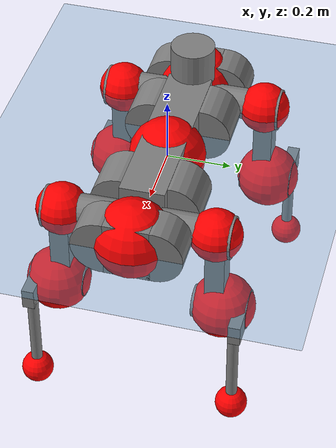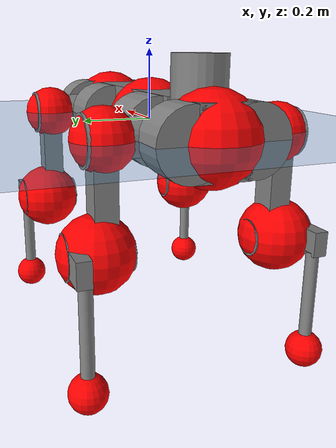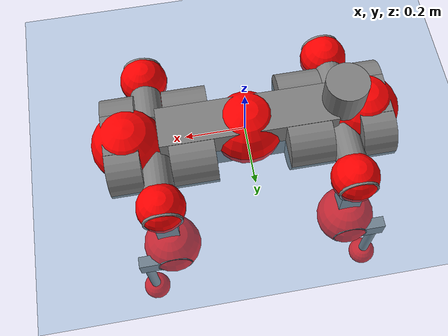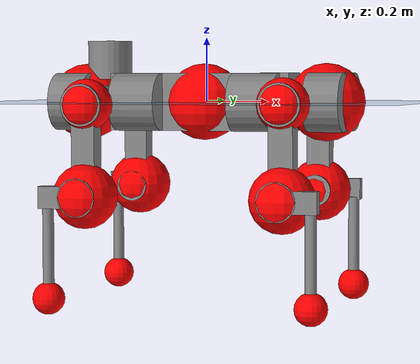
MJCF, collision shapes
<mujoco model="anymal_c">
  <compiler angle="radian" assetdir="assets" balanceinertia="true" inertiafromgeom="false"/>

  <option timestep="0.005" density="1.2" viscosity="2e-05"/>

  <size nkey="1"/>

  <visual>
    <quality shadowsize="8192"/>
    <map shadowclip="0.5"/>
  </visual>

  <default>
    <default class="/">
      <material specular="0" shininess="0.25"/>
      <geom contype="0" conaffinity="0" group="1" solref="-1000 -80"/>
      <site size="0.01 0.005 0.005" group="5"/>
      <general forcelimited="true" forcerange="-80 80" biastype="affine" gainprm="80" biasprm="0 -80 -2"/>
      <default class="anymal_c">
        <joint armature="0.01" damping="0.01" frictionloss="0.1"/>
        <default class="visual">
          <geom type="mesh" group="2"/>
          <default class="visual_zflip"/>
        </default>
        <default class="collision">
          <geom type="cylinder" group="3"/>
          <default class="foot">
            <geom size="0.03 0 0" type="sphere" condim="6" priority="1" friction="0.8 0.02 0.01" solimp="0.015 1 0.03"/>
          </default>
        </default>
      </default>
      <default class="reward_collision_sphere">
        <geom group="5" rgba="1 0 0 1"/>
      </default>
    </default>
  </default>

  <asset>
    <texture type="skybox" colorspace="auto" name="//unnamed_texture_0" builtin="gradient" rgb1="0.95 0.95 0.95" rgb2="0.95 0.95 0.95" width="100" height="600"/>
    <texture type="2d" colorspace="auto" name="texplane" builtin="checker" rgb1="0.345 0.575 0.748" rgb2="0.345 0.575 0.748" markrgb="1 1 1" width="512" height="512"/>
    <texture type="2d" colorspace="linear" name="base" file="base.png"/>
    <texture type="2d" colorspace="linear" name="top_shell" file="top_shell.png"/>
    <texture type="2d" colorspace="linear" name="bottom_shell" file="bottom_shell.png"/>
    <texture type="2d" colorspace="linear" name="remote" file="remote.png"/>
    <texture type="2d" colorspace="linear" name="hatch" file="hatch.png"/>
    <texture type="2d" colorspace="linear" name="handle" file="handle.png"/>
    <texture type="2d" colorspace="linear" name="face" file="face.png"/>
    <texture type="2d" colorspace="linear" name="battery" file="battery.png"/>
    <texture type="2d" colorspace="linear" name="lidar_cage" file="lidar_cage.png"/>
    <texture type="2d" colorspace="linear" name="depth_camera" file="depth_camera.png"/>
    <texture type="2d" colorspace="linear" name="wide_angle_camera" file="wide_angle_camera.png"/>
    <texture type="2d" colorspace="linear" name="lidar" file="lidar.png"/>
    <texture type="2d" colorspace="linear" name="drive" file="drive.png"/>
    <texture type="2d" colorspace="linear" name="hip_l" file="hip_l.png"/>
    <texture type="2d" colorspace="linear" name="shank_l" file="shank_l.png"/>
    <texture type="2d" colorspace="linear" name="foot" file="foot.png"/>
    <texture type="2d" colorspace="linear" name="thigh" file="thigh.png"/>
    <texture type="2d" colorspace="linear" name="shank_r" file="shank_r.png"/>
    <texture type="2d" colorspace="linear" name="hip_r" file="hip_r.png"/>
    <material name="MatPlane" class="/" texture="texplane" texuniform="true" texrepeat="2 2" specular="0.9" shininess="0.5"/>
    <material name="black_plastic" class="/" rgba="0.007 0.007 0.007 1"/>
    <material name="green" class="/" rgba="0.052 0.178 0.033 1"/>
    <material name="red" class="/" rgba="0.178 0.006 0.005 1"/>
    <material name="yellow" class="/" rgba="0.178 0.119 0.006 1"/>
    <material name="lwl" class="/" rgba="0.8 0.8 0.8 1"/>
    <material name="base" class="/" texture="base"/>
    <material name="top_shell" class="/" texture="top_shell"/>
    <material name="bottom_shell" class="/" texture="bottom_shell"/>
    <material name="hip_l" class="/" texture="hip_l"/>
    <material name="thigh" class="/" texture="thigh"/>
    <material name="shank_l" class="/" texture="shank_l"/>
    <material name="foot" class="/" texture="foot"/>
    <material name="hip_r" class="/" texture="hip_r"/>
    <material name="shank" class="/" texture="shank_r"/>
    <material name="hatch" class="/" texture="hatch"/>
    <material name="remote" class="/" texture="remote"/>
    <material name="handle" class="/" texture="handle"/>
    <material name="face" class="/" texture="face"/>
    <material name="depth_camera" class="/" texture="depth_camera"/>
    <material name="wide_angle_camera" class="/" texture="wide_angle_camera"/>
    <material name="battery" class="/" texture="battery"/>
    <material name="lidar_cage" class="/" texture="lidar_cage"/>
    <material name="lidar" class="/" texture="lidar"/>
    <material name="drive" class="/" texture="drive"/>
    <mesh name="base_0" class="/" file="base_0.obj"/>
    <mesh name="base_1" class="/" file="base_1.obj"/>
    <mesh name="base_2" class="/" file="base_2.obj"/>
    <mesh name="base_3" class="/" file="base_3.obj"/>
    <mesh name="base_4" class="/" file="base_4.obj"/>
    <mesh name="base_5" class="/" file="base_5.obj"/>
    <mesh name="top_shell" class="/" file="top_shell.obj"/>
    <mesh name="bottom_shell" class="/" file="bottom_shell.obj"/>
    <mesh name="remote" class="/" file="remote.obj"/>
    <mesh name="handle" class="/" file="handle.obj"/>
    <mesh name="face" class="/" file="face.obj"/>
    <mesh name="wide_angle_camera" class="/" file="wide_angle_camera.obj"/>
    <mesh name="depth_camera" class="/" file="depth_camera.obj"/>
    <mesh name="battery" class="/" file="battery.obj"/>
    <mesh name="lidar_cage" class="/" file="lidar_cage.obj"/>
    <mesh name="lidar" class="/" file="lidar.obj"/>
    <mesh name="drive" class="/" file="drive.obj"/>
    <mesh name="hip_l" class="/" file="hip_l.obj"/>
    <mesh name="thigh" class="/" file="thigh.obj"/>
    <mesh name="shank_l" class="/" file="shank_l.obj"/>
    <mesh name="foot" class="/" file="foot.obj"/>
    <mesh name="hip_r" class="/" file="hip_r.obj"/>
    <mesh name="hatch" class="/" file="hatch.obj"/>
    <mesh name="shank_r" class="/" file="shank_r.obj"/>
  </asset>

  <worldbody>
    <geom name="floor" class="/" size="100 100 0.125" type="plane" group="0" material="MatPlane"/>
    <light name="toplight_shadow" class="/" pos="0 0 5" dir="0.0990148 0.0990148 -0.990148" type="directional" ambient="0.04 0.04 0.04" diffuse="0.55 0.55 0.55" specular="0.12 0.12 0.12"/>
    <light name="toplight_fill" class="/" pos="0 0 5" dir="0.0990148 0.0990148 -0.990148" type="directional" castshadow="false" ambient="0.04 0.04 0.04" diffuse="0.3 0.3 0.3" specular="0.08 0.08 0.08"/>
    <body name="trunk" childclass="anymal_c" pos="-0.00617065 -0.00157962 -0.000522934" quat="0.999997 0.00238929 -0.000162368 0.000222543">
      <inertial pos="0.00766075 0.000538947 0.0458854" quat="0.509336 0.500211 0.498149 0.492151" mass="21.3396" diaginertia="0.335545 1.25493 0.214379"/>
      <joint name="//unnamed_joint_0" type="free" armature="0" damping="0" frictionloss="0"/>
      <geom name="//unnamed_geom_1" class="visual" material="green" mesh="base_0"/>
      <geom name="//unnamed_geom_2" class="visual" material="yellow" mesh="base_1"/>
      <geom name="//unnamed_geom_3" class="visual" material="red" mesh="base_2"/>
      <geom name="//unnamed_geom_4" class="visual" material="black_plastic" mesh="base_3"/>
      <geom name="//unnamed_geom_5" class="visual" material="lwl" mesh="base_4"/>
      <geom name="//unnamed_geom_6" class="visual" material="base" mesh="base_5"/>
      <geom name="trunk_1" class="collision" size="0.291673 0.0704038 0.0905192" type="box"/>
      <geom name="trunk_2" class="collision" size="0.0905192 0.0729182" pos="0.190755 0.0804112 0" quat="0.707107 0 0.707107 0"/>
      <geom name="trunk_3" class="collision" size="0.0905192 0.0729182" pos="-0.190755 0.0804112 0" quat="0.707107 0 0.707107 0"/>
      <geom name="trunk_4" class="collision" size="0.0905192 0.0729182" pos="0.190755 -0.0804112 0" quat="0.707107 0 0.707107 0"/>
      <geom name="trunk_5" class="collision" size="0.0905192 0.0729182" pos="-0.190755 -0.0804112 0" quat="0.707107 0 0.707107 0"/>
      <geom name="//unnamed_geom_12" class="visual" material="top_shell" mesh="top_shell"/>
      <geom name="//unnamed_geom_13" class="visual" material="bottom_shell" mesh="bottom_shell"/>
      <geom name="//unnamed_geom_14" class="visual" material="remote" mesh="remote"/>
      <geom name="//unnamed_geom_15" class="visual" material="handle" mesh="handle"/>
      <geom name="//unnamed_geom_16" class="visual" pos="0.36353 0 0" quat="1 0 0 0" material="face" mesh="face"/>
      <geom name="trunk_6" class="collision" size="0.0553173 0.0704038 0.0905192" pos="0.411767 0 0" type="box"/>
      <geom name="//unnamed_geom_18" class="collision" size="0.0905192 0.0553173" pos="0.411767 0.0804112 0" quat="0.707107 0 0.707107 0"/>
      <geom name="//unnamed_geom_19" class="collision" size="0.0905192 0.0553173" pos="0.411767 -0.0804112 0" quat="0.707107 0 0.707107 0"/>
      <geom name="//unnamed_geom_20" class="visual" pos="0.404887 0 -0.0298233" quat="0.965926 0 0.258819 0" material="depth_camera" mesh="depth_camera"/>
      <geom name="//unnamed_geom_21" class="visual" pos="0.449918 0 0.0148434" material="wide_angle_camera" mesh="wide_angle_camera"/>
      <geom name="//unnamed_geom_22" class="visual_zflip" pos="-0.36353 0 0" quat="0 0 0 1" material="face" mesh="face"/>
      <geom name="trunk_7" class="collision" size="0.0553173 0.0704038 0.0905192" pos="-0.411767 0 0" quat="0 0 0 1" type="box"/>
      <geom name="//unnamed_geom_24" class="collision" size="0.0905192 0.0553173" pos="-0.411767 -0.0804112 0" quat="0 -0.707107 0 0.707107"/>
      <geom name="//unnamed_geom_25" class="collision" size="0.0905192 0.0553173" pos="-0.411767 0.0804112 0" quat="0 -0.707107 0 0.707107"/>
      <geom name="//unnamed_geom_26" class="visual" pos="-0.404887 0 -0.0298233" quat="0 -0.258819 0 0.965926" material="depth_camera" mesh="depth_camera"/>
      <geom name="//unnamed_geom_27" class="visual_zflip" pos="-0.449918 0 0.0148434" quat="0 0 0 1" material="wide_angle_camera" mesh="wide_angle_camera"/>
      <geom name="//unnamed_geom_28" class="visual" material="battery" mesh="battery"/>
      <geom name="//unnamed_geom_29" class="visual" pos="0 0.091402 0.027934" quat="0.683013 -0.183013 0.183013 0.683013" material="depth_camera" mesh="depth_camera"/>
      <geom name="//unnamed_geom_30" class="visual" pos="0 -0.091402 0.027934" quat="0.683013 0.183013 0.183013 -0.683013" material="depth_camera" mesh="depth_camera"/>
      <geom name="//unnamed_geom_31" class="visual" pos="-0.31924 0 0.0728784" quat="1 0 0 0" material="lidar_cage" mesh="lidar_cage"/>
      <geom name="trunk_8" class="collision" size="0.0704038 0.0603461" pos="-0.31924 0 0.132371"/>
      <geom name="//unnamed_geom_33" class="visual" pos="-0.31924 0.000106743 0.140997" quat="0.707107 0 0 -0.707107" material="lidar" mesh="lidar"/>
      <geom name="//unnamed_geom_34" class="visual" pos="0.263022 0.119412 2.71152e-09" quat="0.258819 0.965926 0 0" material="drive" mesh="drive"/>
      <geom name="//unnamed_geom_35" class="visual" pos="0.263022 -0.119412 -2.71152e-09" quat="0.258819 -0.965926 0 0" material="drive" mesh="drive"/>
      <geom name="//unnamed_geom_36" class="visual" pos="-0.263022 0.119412 -2.71152e-09" quat="0 0 0.965926 -0.258819" material="drive" mesh="drive"/>
      <geom name="//unnamed_geom_37" class="visual" pos="-0.263022 -0.119412 2.71152e-09" quat="0 0 -0.965926 -0.258819" material="drive" mesh="drive"/>
      <geom name="//unnamed_geom_38" class="visual" pos="0.101736 0 0.0723826" quat="1 0 0 0" material="hatch" mesh="hatch"/>
      <geom name="//unnamed_geom_39" class="reward_collision_sphere" size="0.120692"/>
      <geom name="//unnamed_geom_40" class="reward_collision_sphere" size="0.120692" pos="0.394665 0 0"/>
      <geom name="//unnamed_geom_41" class="reward_collision_sphere" size="0.120692" pos="-0.394665 0 0"/>
      <site name="imu" pos="0.209301 0.00872984 0.0238969" size="0.0100577"/>
      <camera name="track" pos="0 -2.29746 0" quat="0.707107 0.707107 0 0" mode="trackcom"/>
      <camera name="ego_camera" pos="0.394665 0 -0.0396617" quat="-0.5 -0.5 0.5 0.5"/>
      <body name="LF_HIP" pos="0.263811 0.117855 0.000655214" quat="0.259023 0.965871 0.000135067 -0.000238982">
        <inertial pos="0.05228 -0.0153846 -0.0104774" quat="-0.133426 0.70476 -0.141438 0.68228" mass="2.894" diaginertia="0.00288462 0.0101426 0.00314903"/>
        <joint name="LF_HAA" pos="0 0 0" axis="0.999568 0.0147226 0.0254421" range="-0.833725 0.442141" armature="0.0104307" damping="0.0111444" frictionloss="0.0968987"/>
        <geom name="//unnamed_geom_42" class="visual" pos="0 0.000159507 -2.61988e-05" quat="0.258819 -0.965926 0 0" material="hip_l" mesh="hip_l"/>
        <geom name="//unnamed_geom_43" class="visual" pos="0.0525343 -0.0671779 -0.0376225" quat="0.183013 -0.683013 0.683013 0.183013" material="drive" mesh="drive"/>
        <geom name="//unnamed_geom_44" class="collision" size="0.0502884 0.0704038" pos="0.0525343 -0.0137386 -0.0068466" quat="-0.353553 -0.612372 0.612372 -0.353553"/>
        <body name="LF_THIGH" pos="0.052958 -0.0837813 -0.0417091" quat="0.181674 -0.682371 0.683987 0.1831">
          <inertial pos="0.0251714 0.00118508 -0.238989" quat="0.993166 -0.00515502 -0.080656 0.0841939" mass="3.1465" diaginertia="0.0161719 0.062601 0.00377695"/>
          <joint name="LF_HFE" pos="0 0 0" axis="0.999971 0.00680311 -0.00338733" stiffness="0.0314804" range="-3.12907 3.1525" armature="0.00955792" damping="0.00551797" frictionloss="0.092461"/>
          <geom name="//unnamed_geom_45" class="visual" pos="-0.00540572 -8.51815e-06 0" quat="0.707107 0 0 -0.707107" material="thigh" mesh="thigh"/>
          <geom name="//unnamed_geom_46" class="collision" size="0.065375 0.0402308" pos="0.0350813 0 0" quat="0.5 0.5 -0.5 -0.5"/>
          <geom name="//unnamed_geom_47" class="collision" size="0.0377163 0.0301731 0.142129" pos="0.026311 0 -0.140119" quat="0.707107 0 0 -0.707107" type="box"/>
          <geom name="//unnamed_geom_48" class="visual" pos="0.0879664 0 -0.28259" quat="1 0 0 0" material="drive" mesh="drive"/>
          <geom name="//unnamed_geom_49" class="collision" size="0.0502884 0.0704038" pos="0.0265741 0 -0.28259" quat="0.707107 0 0.707107 0"/>
          <geom name="//unnamed_geom_50" class="reward_collision_sphere" size="0.0804615" pos="0.0219258 0 0"/>
          <body name="LF_SHANK" pos="0.0908434 0.00466782 -0.284678" quat="1 0.000131413 -0.000358848 0.000246908">
            <inertial pos="0.00794713 -0.0695598 -0.0814095" quat="0.992815 -0.116162 -0.00692944 -0.0278835" mass="0.593191" diaginertia="0.00488195 0.0167366 0.00100984"/>
            <joint name="LF_KFE" pos="0 0 0" axis="0.999963 0.00815125 0.00292385" range="-3.04706 3.16522" armature="0.0101375" damping="0.0218931" frictionloss="0.100736"/>
            <geom name="//unnamed_geom_51" class="visual" pos="-0.00176269 -0.00939874 0" quat="0.707107 0 0 -0.707107" material="shank_l" mesh="shank_l"/>
            <geom name="LF_kfe_act" class="collision" size="0.0603461 0.0201154" pos="0.0175407 0 0" quat="0.5 0.5 -0.5 -0.5"/>
            <geom name="//unnamed_geom_53" class="collision" size="0.0578307 0.0339447 0.0191096" pos="0.0175407 -0.0660509 0" quat="0.5 0.5 -0.5 -0.5" type="box"/>
            <geom name="//unnamed_geom_54" class="visual" pos="0.0114457 -0.10406 -0.335112" quat="0.382683 0 0 -0.92388" material="foot" mesh="foot"/>
            <geom name="LF_calf" class="collision" size="0.017601 0.142067" pos="0.0114453 -0.101031 -0.167556" quat="0.707107 0 0 -0.707107"/>
            <geom name="LF_foot" class="foot" size="0.0205429" pos="0.0114453 -0.101031 -0.312802" quat="0.707107 0 0 -0.707107"/>
            <geom name="//unnamed_geom_57" class="reward_collision_sphere" size="0.100577" pos="-0.0438517 0 0"/>
            <geom name="//unnamed_geom_58" class="reward_collision_sphere" size="0.0502884" pos="0.0114453 -0.101031 -0.312802"/>
            <site name="LF_foot" class="foot" pos="0.0114453 -0.101031 -0.312802" quat="0.707107 0 0 -0.707107" size="0.0100577"/>
          </body>
        </body>
      </body>
      <body name="RF_HIP" pos="0.266146 -0.11915 0.00489466" quat="0.258586 -0.965987 -0.00101307 -0.000790842">
        <inertial pos="0.0499016 0.021665 -0.0074504" quat="0.150235 0.68271 0.126612 0.703779" mass="2.86796" diaginertia="0.00314137 0.0099088 0.00321353"/>
        <joint name="RF_HAA" pos="0 0 0" axis="1 4.23484e-05 0.000756858" range="-0.458263 0.720259" armature="0.0110012" damping="0.0205287" frictionloss="0.118342"/>
        <geom name="//unnamed_geom_59" class="visual" pos="0 -0.000159505 -2.61988e-05" quat="0.258819 0.965926 0 0" material="hip_r" mesh="hip_r"/>
        <geom name="//unnamed_geom_60" class="visual" pos="0.0525343 0.0671779 -0.0376225" quat="0.183013 0.683013 0.683013 -0.183013" material="drive" mesh="drive"/>
        <geom name="//unnamed_geom_61" class="collision" size="0.0502884 0.0704038" pos="0.0525343 0.0137386 -0.0068466" quat="-0.353553 0.612372 0.612372 0.353553"/>
        <body name="RF_THIGH" pos="0.0520313 0.0895174 -0.0424206" quat="0.182444 0.682858 0.683369 -0.182826">
          <inertial pos="0.0267945 0.00248384 -0.245308" quat="0.992155 -0.00648856 -0.0814133 0.0946506" mass="3.0725" diaginertia="0.0152481 0.0581534 0.00382475"/>
          <joint name="RF_HFE" pos="0 0 0" axis="0.999991 0.00304372 -0.00300581" stiffness="0.00466507" range="-3.19163 3.08065" armature="0.00998932" damping="0.00127685" frictionloss="0.10466"/>
          <geom name="//unnamed_geom_62" class="visual" pos="-0.00540572 -8.51815e-06 0" quat="0.707107 0 0 -0.707107" material="thigh" mesh="thigh"/>
          <geom name="//unnamed_geom_63" class="collision" size="0.065375 0.0402308" pos="0.0350813 0 0" quat="0.5 0.5 0.5 0.5"/>
          <geom name="//unnamed_geom_64" class="collision" size="0.0377163 0.0301731 0.142129" pos="0.026311 0 -0.140119" quat="0.707107 0 0 0.707107" type="box"/>
          <geom name="//unnamed_geom_65" class="visual" pos="0.0879664 0 -0.28259" quat="1 0 0 0" material="drive" mesh="drive"/>
          <geom name="//unnamed_geom_66" class="collision" size="0.0502884 0.0704038" pos="0.0265741 0 -0.28259" quat="0.707107 0 0.707107 0"/>
          <geom name="//unnamed_geom_67" class="reward_collision_sphere" size="0.0804615" pos="0.0219258 0 0"/>
          <body name="RF_SHANK" pos="0.0889172 0.00294897 -0.284547" quat="1 -1.69258e-05 -5.75871e-05 7.74903e-06">
            <inertial pos="0.0057615 0.0717992 -0.0798322" quat="0.99306 0.11749 -0.00285932 0.00445475" mass="0.593173" diaginertia="0.00530642 0.0186022 0.00110353"/>
            <joint name="RF_KFE" pos="0 0 0" axis="0.999658 0.00902574 -0.0245473" stiffness="0.0167423" range="-3.08657 3.10322" armature="0.00913484" damping="0" frictionloss="0.094667"/>
            <geom name="//unnamed_geom_68" class="visual" pos="-0.00176268 0.00939872 0" quat="0.707107 0 0 0.707107" material="shank" mesh="shank_r"/>
            <geom name="RF_kfe_act" class="collision" size="0.0603461 0.0201154" pos="0.0175407 0 0" quat="0.5 0.5 0.5 0.5"/>
            <geom name="//unnamed_geom_70" class="collision" size="0.0578307 0.0339447 0.0191096" pos="0.0175407 0.0660509 0" quat="0.5 0.5 0.5 0.5" type="box"/>
            <geom name="//unnamed_geom_71" class="visual" pos="0.0114449 0.10406 -0.335112" quat="0.382683 0 0 0.92388" material="foot" mesh="foot"/>
            <geom name="RF_calf" class="collision" size="0.017601 0.142067" pos="0.0114453 0.101031 -0.167556" quat="0.707107 0 0 0.707107"/>
            <geom name="RF_foot" class="foot" size="0.0268857" pos="0.0114453 0.101031 -0.312802" quat="0.707107 0 0 0.707107"/>
            <geom name="//unnamed_geom_74" class="reward_collision_sphere" size="0.100577" pos="-0.0438517 0 0"/>
            <geom name="//unnamed_geom_75" class="reward_collision_sphere" size="0.0502884" pos="0.0114453 0.101031 -0.312802"/>
            <site name="RF_foot" class="foot" pos="0.0114453 0.101031 -0.312802" quat="0.707107 0 0 0.707107" size="0.0100577"/>
          </body>
        </body>
      </body>
      <body name="LH_HIP" pos="-0.26147 0.119651 0.00208444" quat="5.43197e-06 -2.18699e-05 0.965934 -0.258787">
        <inertial pos="0.0511955 0.0122427 -0.00606619" quat="0.163249 0.673308 0.143212 0.706751" mass="2.72986" diaginertia="0.00320486 0.0100873 0.00306585"/>
        <joint name="LH_HAA" pos="0 0 0" axis="0.999996 -0.00244757 -0.00141575" range="-0.542494 0.73387" armature="0.0115016" damping="0" frictionloss="0.0795277"/>
        <geom name="//unnamed_geom_76" class="visual" pos="0 -0.000159505 -2.61988e-05" quat="-0.258819 -0.965926 0 0" material="hip_r" mesh="hip_r"/>
        <geom name="//unnamed_geom_77" class="visual" pos="0.0525343 0.0671779 -0.0376225" quat="0.183013 0.683013 0.683013 -0.183013" material="drive" mesh="drive"/>
        <geom name="//unnamed_geom_78" class="collision" size="0.0502884 0.0704038" pos="0.0525343 0.0137386 -0.0068466" quat="-0.353553 0.612372 0.612372 0.353553"/>
        <body name="LH_THIGH" pos="0.0510291 0.087386 -0.0456159" quat="0.182105 0.682516 0.68392 -0.182382">
          <inertial pos="0.0272633 0.000389269 -0.241041" quat="0.993221 -0.00875745 -0.0737982 0.0893812" mass="2.99268" diaginertia="0.0163169 0.0632561 0.00405245"/>
          <joint name="LH_HFE" pos="0 0 0" axis="0.99999 -0.00139623 0.00414455" range="-3.11806 3.17178" armature="0.00892723" damping="0.00707334" frictionloss="0.1026"/>
          <geom name="//unnamed_geom_79" class="visual" pos="-0.00540572 -8.51815e-06 0" quat="0.707107 0 0 -0.707107" material="thigh" mesh="thigh"/>
          <geom name="//unnamed_geom_80" class="collision" size="0.065375 0.0402308" pos="0.0350813 0 0" quat="0.5 0.5 -0.5 -0.5"/>
          <geom name="//unnamed_geom_81" class="collision" size="0.0377163 0.0301731 0.142129" pos="0.026311 0 -0.140119" quat="0.707107 0 0 -0.707107" type="box"/>
          <geom name="//unnamed_geom_82" class="visual" pos="0.0879664 0 -0.28259" quat="1 0 0 0" material="drive" mesh="drive"/>
          <geom name="//unnamed_geom_83" class="collision" size="0.0502884 0.0704038" pos="0.0265741 0 -0.28259" quat="0.707107 0 0.707107 0"/>
          <geom name="//unnamed_geom_84" class="reward_collision_sphere" size="0.0804615" pos="0.0219258 0 0"/>
          <body name="LH_SHANK" pos="0.0880229 -0.000796811 -0.277921" quat="1 -0.000712431 -0.000331809 -0.000504967">
            <inertial pos="0.00317027 0.0645812 -0.0784958" quat="0.992933 0.115911 -0.00105664 0.0254427" mass="0.613189" diaginertia="0.00540008 0.0191869 0.00117688"/>
            <joint name="LH_KFE" pos="0 0 0" axis="0.999943 0.00673143 -0.00834008" stiffness="0.0297636" range="-3.1329 3.1549" armature="0.00991033" damping="0.0129962" frictionloss="0.0729911"/>
            <geom name="//unnamed_geom_85" class="visual" pos="-0.00176268 0.00939872 0" quat="-0.707107 0 0 -0.707107" material="shank" mesh="shank_r"/>
            <geom name="LH_kfe_act" class="collision" size="0.0603461 0.0201154" pos="0.0175407 0 0" quat="0.5 0.5 -0.5 -0.5"/>
            <geom name="//unnamed_geom_87" class="collision" size="0.0578307 0.0339447 0.0191096" pos="0.0175407 0.0660509 0" quat="0.5 0.5 -0.5 -0.5" type="box"/>
            <geom name="//unnamed_geom_88" class="visual" pos="0.0114449 0.10406 -0.335112" quat="-0.382683 0 0 -0.92388" material="foot" mesh="foot"/>
            <geom name="LH_calf" class="collision" size="0.017601 0.142067" pos="0.0114453 0.101031 -0.167556" quat="0.707107 0 0 -0.707107"/>
            <geom name="LH_foot" class="foot" size="0.0310362" pos="0.0114453 0.101031 -0.312802" quat="0.707107 0 0 -0.707107"/>
            <geom name="//unnamed_geom_91" class="reward_collision_sphere" size="0.100577" pos="-0.0438517 0 0"/>
            <geom name="//unnamed_geom_92" class="reward_collision_sphere" size="0.0502884" pos="0.0114453 0.101031 -0.312802"/>
            <site name="LH_foot" class="foot" pos="0.0114453 0.101031 -0.312802" quat="0.707107 0 0 -0.707107" size="0.0100577"/>
          </body>
        </body>
      </body>
      <body name="RH_HIP" pos="-0.26141 -0.119036 0.00193745" quat="-0.000337832 -0.00201806 -0.965499 -0.260397">
        <inertial pos="0.0441253 -0.0198006 -0.00279275" quat="-0.12755 0.712092 -0.142623 0.67551" mass="2.8122" diaginertia="0.00300985 0.00966348 0.00305241"/>
        <joint name="RH_HAA" pos="0 0 0" axis="0.999566 -0.00806559 -0.0283292" range="-0.690585 0.543269" armature="0.00977584" damping="0.00403919" frictionloss="0.112849"/>
        <geom name="//unnamed_geom_93" class="visual" pos="0 0.000159507 -2.61988e-05" quat="-0.258819 0.965926 0 0" material="hip_l" mesh="hip_l"/>
        <geom name="//unnamed_geom_94" class="visual" pos="0.0525343 -0.0671779 -0.0376225" quat="-0.183013 0.683013 -0.683013 -0.183013" material="drive" mesh="drive"/>
        <geom name="//unnamed_geom_95" class="collision" size="0.0502884 0.0704038" pos="0.0525343 -0.0137386 -0.0068466" quat="0.353553 0.612372 -0.612372 0.353553"/>
        <body name="RH_THIGH" pos="0.0502938 -0.0799755 -0.0361066" quat="-0.182962 0.682978 -0.683089 -0.182908">
          <inertial pos="0.0251763 -0.000890565 -0.243878" quat="0.993226 -0.00392234 -0.0795332 0.0846274" mass="3.27842" diaginertia="0.0152774 0.0590841 0.00398504"/>
          <joint name="RH_HFE" pos="0 0 0" axis="0.999936 -0.00568062 0.00978775" range="-3.14309 3.06735" armature="0.00899528" damping="0.00737796" frictionloss="0.112838"/>
          <geom name="//unnamed_geom_96" class="visual" pos="-0.00540572 -8.51815e-06 0" quat="0.707107 0 0 -0.707107" material="thigh" mesh="thigh"/>
          <geom name="//unnamed_geom_97" class="collision" size="0.065375 0.0402308" pos="0.0350813 0 0" quat="0.5 0.5 0.5 0.5"/>
          <geom name="//unnamed_geom_98" class="collision" size="0.0377163 0.0301731 0.142129" pos="0.026311 0 -0.140119" quat="0.707107 0 0 0.707107" type="box"/>
          <geom name="//unnamed_geom_99" class="visual" pos="0.0879664 0 -0.28259" quat="1 0 0 0" material="drive" mesh="drive"/>
          <geom name="//unnamed_geom_100" class="collision" size="0.0502884 0.0704038" pos="0.0265741 0 -0.28259" quat="0.707107 0 0.707107 0"/>
          <geom name="//unnamed_geom_101" class="reward_collision_sphere" size="0.0804615" pos="0.0219258 0 0"/>
          <body name="RH_SHANK" pos="0.0870671 0.00310607 -0.281469" quat="1 7.60883e-05 0.000121403 -8.93217e-05">
            <inertial pos="0.00687101 -0.067745 -0.0804925" quat="0.992959 -0.11555 -0.00111969 -0.0260758" mass="0.591903" diaginertia="0.00541433 0.0187344 0.0010401"/>
            <joint name="RH_KFE" pos="0 0 0" axis="0.999787 -0.000497023 0.0206381" range="-3.15824 3.1429" armature="0.00902597" damping="0" frictionloss="0.0895569"/>
            <geom name="//unnamed_geom_102" class="visual" pos="-0.00176269 -0.00939874 0" quat="0.707107 0 0 -0.707107" material="shank_l" mesh="shank_l"/>
            <geom name="RH_kfe_act" class="collision" size="0.0603461 0.0201154" pos="0.0175407 0 0" quat="0.5 0.5 0.5 0.5"/>
            <geom name="//unnamed_geom_104" class="collision" size="0.0578307 0.0339447 0.0191096" pos="0.0175407 -0.0660509 0" quat="0.5 0.5 0.5 0.5" type="box"/>
            <geom name="//unnamed_geom_105" class="visual" pos="0.0114457 -0.10406 -0.335112" quat="0.382683 0 0 -0.92388" material="foot" mesh="foot"/>
            <geom name="RH_calf" class="collision" size="0.017601 0.142067" pos="0.0114453 -0.101031 -0.167556" quat="0.707107 0 0 0.707107"/>
            <geom name="RH_foot" class="foot" size="0.0345512" pos="0.0114453 -0.101031 -0.312802" quat="0.707107 0 0 0.707107"/>
            <geom name="//unnamed_geom_108" class="reward_collision_sphere" size="0.100577" pos="-0.0438517 0 0"/>
            <geom name="//unnamed_geom_109" class="reward_collision_sphere" size="0.0502884" pos="0.0114453 -0.101031 -0.312802"/>
            <site name="RH_foot" class="foot" pos="0.0114453 -0.101031 -0.312802" quat="0.707107 0 0 0.707107" size="0.0100577"/>
          </body>
        </body>
      </body>
    </body>
  </worldbody>

  <contact>
    <pair class="/" geom1="floor" geom2="LF_foot" name="//unnamed_contact_0"/>
    <pair class="/" geom1="floor" geom2="RF_foot" name="//unnamed_contact_1"/>
    <pair class="/" geom1="floor" geom2="LH_foot" name="//unnamed_contact_2"/>
    <pair class="/" geom1="floor" geom2="RH_foot" name="//unnamed_contact_3"/>
  </contact>

  <actuator>
    <general name="LF_HAA" class="/" joint="LF_HAA" forcerange="-80.1686 80.1686" gainprm="80.2836" biasprm="0 -80.2836 -2.19183"/>
    <general name="LF_HFE" class="/" joint="LF_HFE" forcerange="-80.5325 80.5325" gainprm="80.2836" biasprm="0 -80.2836 -2.19183"/>
    <general name="LF_KFE" class="/" joint="LF_KFE" forcerange="-75.2968 75.2968" gainprm="80.2836" biasprm="0 -80.2836 -2.19183"/>
    <general name="RF_HAA" class="/" joint="RF_HAA" forcerange="-81.1944 81.1944" gainprm="80.2836" biasprm="0 -80.2836 -2.19183"/>
    <general name="RF_HFE" class="/" joint="RF_HFE" forcerange="-81.398 81.398" gainprm="80.2836" biasprm="0 -80.2836 -2.19183"/>
    <general name="RF_KFE" class="/" joint="RF_KFE" forcerange="-82.9308 82.9308" gainprm="80.2836" biasprm="0 -80.2836 -2.19183"/>
    <general name="LH_HAA" class="/" joint="LH_HAA" forcerange="-64.7364 64.7364" gainprm="80.2836" biasprm="0 -80.2836 -2.19183"/>
    <general name="LH_HFE" class="/" joint="LH_HFE" forcerange="-79.9447 79.9447" gainprm="80.2836" biasprm="0 -80.2836 -2.19183"/>
    <general name="LH_KFE" class="/" joint="LH_KFE" forcerange="-96.1643 96.1643" gainprm="80.2836" biasprm="0 -80.2836 -2.19183"/>
    <general name="RH_HAA" class="/" joint="RH_HAA" forcerange="-84.9251 84.9251" gainprm="80.2836" biasprm="0 -80.2836 -2.19183"/>
    <general name="RH_HFE" class="/" joint="RH_HFE" forcerange="-66.0525 66.0525" gainprm="80.2836" biasprm="0 -80.2836 -2.19183"/>
    <general name="RH_KFE" class="/" joint="RH_KFE" forcerange="-87.8397 87.8397" gainprm="80.2836" biasprm="0 -80.2836 -2.19183"/>
  </actuator>

  <sensor>
    <gyro site="imu" name="imu_angular_velocity"/>
    <velocimeter site="imu" name="imu_linear_velocity"/>
    <framelinvel objtype="site" objname="LF_foot" name="LF_foot_global_linear_velocity"/>
    <framelinvel objtype="site" objname="RF_foot" name="RF_foot_global_linear_velocity"/>
    <framelinvel objtype="site" objname="LH_foot" name="LH_foot_global_linear_velocity"/>
    <framelinvel objtype="site" objname="RH_foot" name="RH_foot_global_linear_velocity"/>
  </sensor>

  <keyframe>
    <key name="home" qpos="0 0 0.55 1 0 0 0 0 0.4 -0.8 0 -0.4 0.8 0 -0.4 0.8 0 0.4 -0.8"/>
  </keyframe>
</mujoco>
